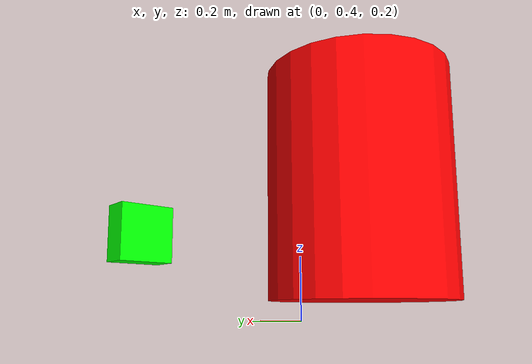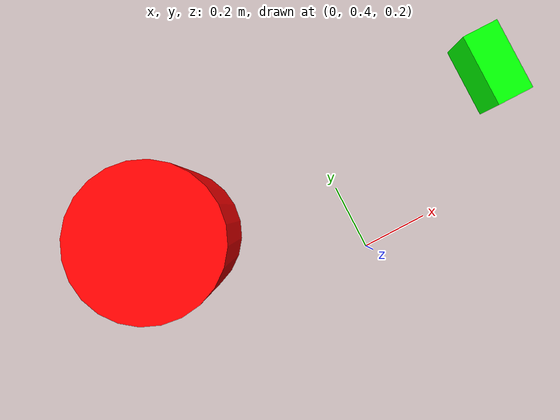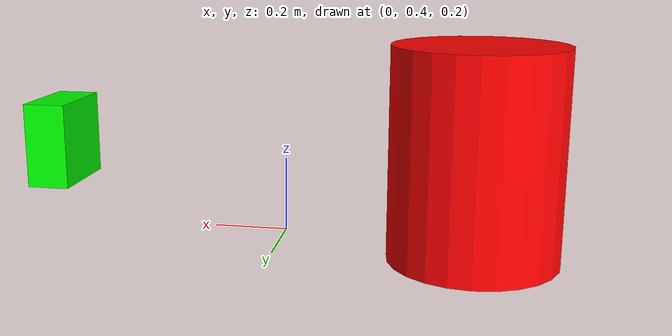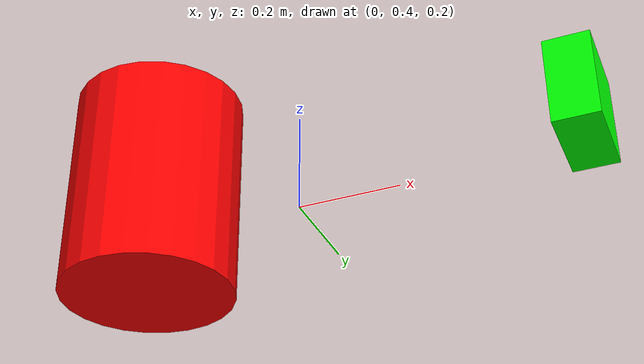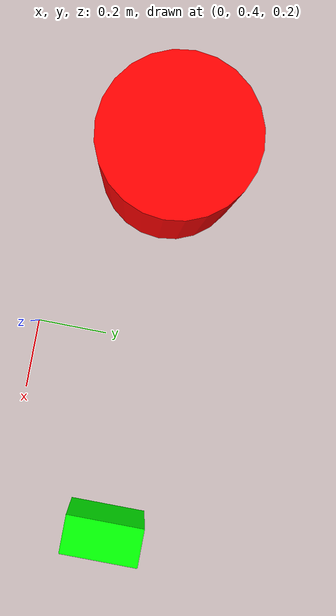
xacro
<?xml version="1.0"?>
<robot xmlns:xacro="http://www.ros.org/wiki/xacro" name="camera">
    <!-- Dummy root link with no inertia -->
    <link name="dummy_root_link"/>

    <!-- Camera link with inertia -->
    <link name="camera_link">
        <visual>
            <origin xyz="0.0 0.0 0.0" rpy="0 0 0"/>
            <geometry>
                <box size="0.1 0.2 0.2"/>
            </geometry>
            <material name="Green">
                <color rgba="0.0 1.0 0.0 1.0"/>
            </material>
        </visual>
        <collision>
            <origin xyz="0.0 0.0 0.0" rpy="0 0 0"/>
            <geometry>
                <box size="0.1 0.2 0.2"/>
            </geometry>
        </collision>
        <inertial>
            <origin xyz="0 0 0"/>
            <mass value="0.1"/>
            <inertia ixx="0.00001" ixy="0" ixz="0" iyy="0.00001" iyz="0" izz="0.00001" />
        </inertial>
    </link>

    <!-- Fixed joint connecting dummy root link to camera link -->
    <joint name="dummy_joint" type="fixed">
        <parent link="dummy_root_link"/>
        <child link="camera_link"/>
        <origin xyz="0.5 0.7 0.5" rpy="0 0 -3.14"/>  <!-- Adjust this to position the camera -->
    </joint>

    <!-- Cylinder at a distance of 1.5 along the x-axis from the camera -->
    <link name="cylinder_link">
        <visual>
            <origin xyz="0.5 0.0 0.0" rpy="0 0 0"/>  <!-- Positioned 1.5 units in the x direction -->
            <geometry>
                <cylinder radius="0.2" length="0.5"/>  <!-- Cylinder shape with radius and length -->
            </geometry>
            <material name="Red">
                <color rgba="1.0 0.0 0.0 1.0"/>
            </material>
        </visual>
        <collision>
            <origin xyz="1.5 0.0 0.0" rpy="0 0 0"/>
            <geometry>
                <cylinder radius="0.05" length="0.2"/>
            </geometry>
        </collision>
        <inertial>
            <origin xyz="0 0 0"/>
            <mass value="0.2"/>  <!-- Adjust mass based on size -->
            <inertia ixx="0.0001" ixy="0" ixz="0" iyy="0.0001" iyz="0" izz="0.0001"/>
        </inertial>
    </link>

    <!-- Fixed joint connecting camera link to the cylinder link -->
    <joint name="camera_to_cylinder_joint" type="fixed">
        <parent link="camera_link"/>
        <child link="cylinder_link"/>
        <origin xyz="0.5 0.0 0.0" rpy="0 0 0"/>
    </joint>

    <!-- Gazebo sensor configuration -->
    <gazebo reference="camera_link">
        <sensor type="camera" name="camera">
            <camera>
                <horizontal_fov>1.3962634</horizontal_fov>
                <image>
                    <width>640</width>
                    <height>480</height>
                    <format>R8G8B8</format>
                </image>
                <clip>
                    <near>0.02</near>
                    <far>300</far>
                </clip>
                <noise>
                    <type>gaussian</type>
                    <mean>0.0</mean>
                    <stddev>0.007</stddev>
                </noise>
            </camera>
            <always_on>true</always_on>
            <update_rate>30</update_rate>
            <topic>camera/image_raw</topic>
            <plugin filename="libignition-gazebo-sensors-system.so" name="ignition::gazebo::systems::Sensors">
                <render_engine>ogre2</render_engine>
            </plugin>
        </sensor>
    </gazebo>
</robot>
